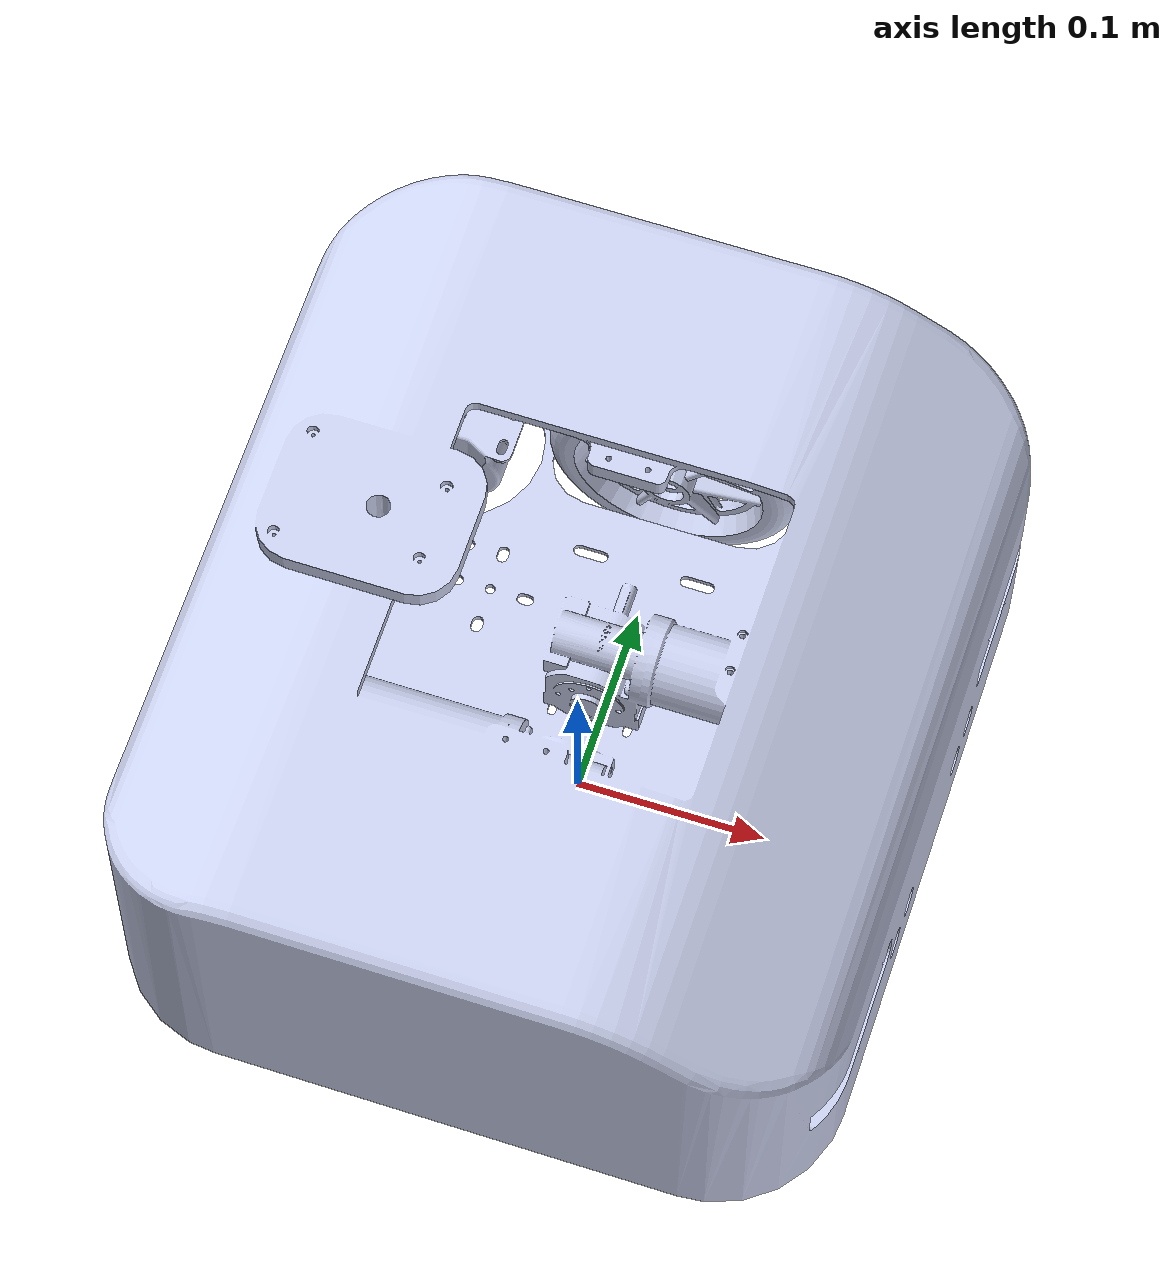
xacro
<?xml version="1.0"?>
<robot xmlns:xacro="http://www.ros.org/wiki/xacro">

<!-- Base Footprint Setup -->

<link name="base_footprint" />
<joint name="base_footprint_joint" type="fixed">
    <origin xyz="0 0 0" rpy="0 0 0" />
    <parent link="base_footprint" />
    <child link="base_link" />
</joint>

<!-- Base Link Body -->

<link name="base_link">
    <inertial>
        <origin xyz="-0.010357 0.00080258 0.12082" rpy="0 0 0" />
        <mass value="3.3192" />
        <inertia
        ixx="0.058318"
        ixy="0.00047719"
        ixz="0.0017019"
        iyy="0.049572"
        iyz="1.0982E-05"
        izz="0.090114" />
    </inertial>
    <visual>
        <origin xyz="0 0 0" rpy="0 0 0" />
        <geometry>
            <mesh filename="package://robot_urdf/meshes/base_link.STL" />
        </geometry>
        <material name="">
            <color rgba="0.79216 0.81961 0.93333 1" />
        </material>
    </visual>
    <collision>
        <origin xyz="0 0 0" rpy="0 0 0" />
        <geometry>
            <mesh filename="package://robot_urdf/meshes/base_link.STL" />
        </geometry>
    </collision>
</link>

<gazebo reference="base_link">
    <material>Gazebo/White</material>
    <mu1 value="0.001"/>
    <mu2 value="0.001"/>
</gazebo>

<!-- Right Wheel + Joint -->

<link name="right_wheel">
    <inertial>
        <origin xyz="-1.7659E-14 -6.4782E-14 -2.6336E-05" rpy="0 0 0" />
        <mass value="0.15848" />
        <inertia
        ixx="0.00022462"
        ixy="5.5078E-17"
        ixz="-1.9887E-17"
        iyy="0.00022462"
        iyz="-7.6718E-17"
        izz="0.00043866" />
    </inertial>
    <visual>
        <origin xyz="0 0 0" rpy="0 0 0" />
        <geometry>
            <mesh filename="package://robot_urdf/meshes/right_wheel.STL" />
        </geometry>
        <material name="">
            <color rgba="0.79216 0.81961 0.93333 1" />
        </material>
    </visual>
    <collision>
        <origin xyz="0 0 0" rpy="0 0 0" />
        <geometry>
            <mesh filename="package://robot_urdf/meshes/right_wheel.STL" />
        </geometry>
    </collision>
</link>

<joint name="right_wheel" type="continuous">
    <origin xyz="0.0005 -0.15942 0.065" rpy="-1.5708 0 -3.1416" />
    <parent link="base_link" />
    <child link="right_wheel" />
    <axis xyz="0 0 -1" />
</joint>

<gazebo reference="right_wheel">
    <material>Gazebo/Black</material>
</gazebo>

<!-- Left Wheel + Joint -->

<link name="left_wheel">
    <inertial>
        <origin xyz="5.8898E-14 -3.228E-14 2.6336E-5" rpy="0 0 0" />
        <mass value="0.15848" />
        <inertia
            ixx="0.00022462"
            ixy="-7.1336E-17"
            ixz="-6.9014E-17"
            iyy="0.00022462"
            iyz="3.8969E-17"
            izz="0.00043866" />
    </inertial>
    <visual>
        <origin xyz="0 0 0" rpy="0 0 0" />
        <geometry>
            <mesh filename="package://robot_urdf/meshes/left_wheel.STL" />
        </geometry>
        <material name="">
            <color rgba="0.79216 0.81961 0.93333 1" />
        </material>
    </visual>
    <collision>
        <origin xyz="0 0 0" rpy="0 0 0" />
        <geometry>
            <mesh filename="package://robot_urdf/meshes/left_wheel.STL" />
        </geometry>
    </collision>
</link>

<joint name="left_wheel" type="continuous">
    <origin xyz="0.0005 0.15807 0.065" rpy="-1.5708 0 0" />
    <parent link="base_link" />
    <child link="left_wheel" />
    <axis xyz="0 0 1" />
</joint>

<gazebo reference="left_wheel">
    <material>Gazebo/Black</material>
</gazebo>

<transmission name="tran1">
    <type>transmission_interface/SimpleTransmission</type>
    <joint name="right_wheel_joint">
      <hardwareInterface>hardware_interface/VelocityJointInterface</hardwareInterface>
    </joint>
    <actuator name="motor1">
       <hardwareInterface>hardware_interface/VelocityJointInterface</hardwareInterface>
     <mechanicalReduction>1</mechanicalReduction>
    </actuator>
  </transmission>

  <transmission name="tran2">
    <type>transmission_interface/SimpleTransmission</type>
    <joint name="left_wheel_joint">
      <hardwareInterface>hardware_interface/VelocityJointInterface</hardwareInterface>
    </joint>
    <actuator name="motor2">
      <hardwareInterface>hardware_interface/VelocityJointInterface</hardwareInterface>
      <mechanicalReduction>1</mechanicalReduction>
    </actuator>
  </transmission>

</robot>
